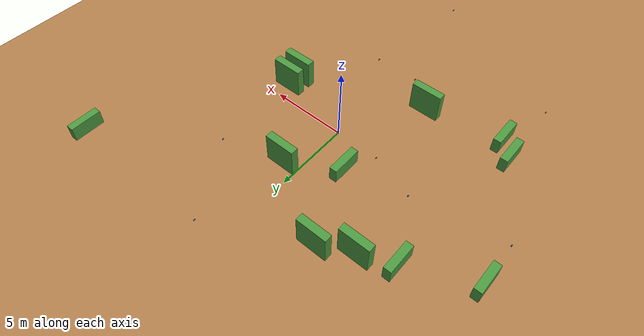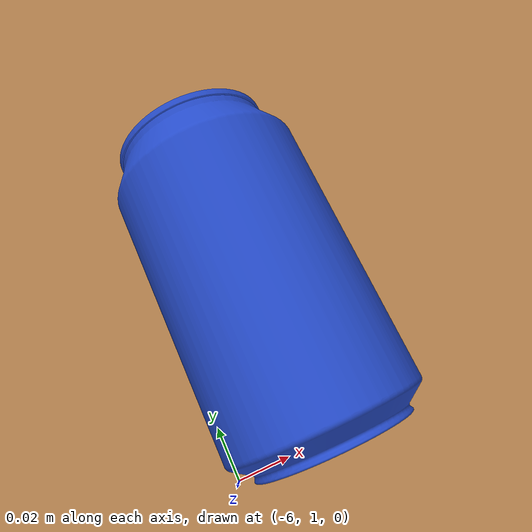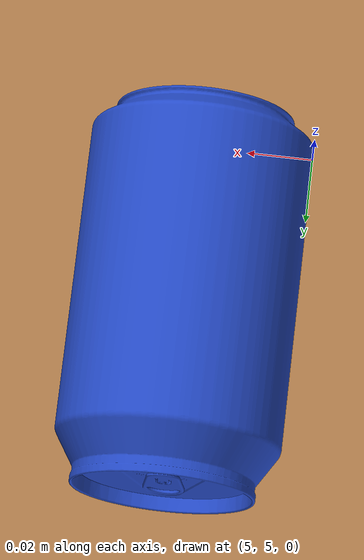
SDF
<?xml version="1.0"?>
<sdf version='1.6'>
<!--monde de base "simple_world"-->
    <world name='default'>
        <include>
            <uri>model://sun</uri>
        </include>
        <model name='ground_plane'>
            <static>1</static>
            <link name='link'>
                <collision name='collision'>
                    <geometry>
                        <plane>
                            <normal>0 0 1</normal>
                            <size>15 15</size>
                        </plane>
                    </geometry>
                    <surface>
                        <friction>
                            <ode>
                                <mu>100</mu>
                                <mu2>50</mu2>
                            </ode>
                        </friction>
                        <bounce/>
                        <contact>
                            <ode/>
                        </contact>
                    </surface>
                    <max_contacts>10</max_contacts>
                </collision>
                <visual name='visual'>
                    <cast_shadows>0</cast_shadows>
                    <geometry>
                        <plane>
                            <normal>0 0 1</normal>
                            <size>40 40</size>
                        </plane>
                    </geometry>
                    <material>
                        <script>
                            <uri>file://media/materials/scripts/gazebo.material</uri>
                            <name>Gazebo/WoodFloor</name>
                        </script>
                    </material>
                </visual>
                <velocity_decay>
                    <linear>0</linear>
                    <angular>0</angular>
                </velocity_decay>
                <self_collide>0</self_collide>
                <kinematic>0</kinematic>
                <gravity>1</gravity>
            </link>
        </model>
		<!--ajout des fichier maillé à notre world crée avec notre générateur d'objets maillé lien dans notre readme -->
		<model name='maillage'>
            <static>1</static>
			<!--maillage-->
      <link name="pepsi_0">
			<pose> -3 0 0 0 0 0</pose>
			<visual name="visual">
				<geometry>
					<mesh>
					  <uri>
             file:///home/corentin/cours_ws/src/my_robot/my_robot_gazebo/world/meshes/Pepsi.STL
           </uri>
           <scale> 0.001 0.001 0.001 </scale>
					</mesh>
				</geometry>
				<material>
					<script>
           <uri>file://media/materials/scripts/gazebo.material</uri>
           <name>Gazebo/Red</name>
					</script>
				</material>
			</visual>
		</link>
		<link name="pepsi_1">
			<pose> 4 -5 0 0 0 0</pose>
			<visual name="visual">
				<geometry>
					<mesh>
					  <uri>
             file:///home/corentin/cours_ws/src/my_robot/my_robot_gazebo/world/meshes/Pepsi.STL
           </uri>
           <scale> 0.001 0.001 0.001 </scale>
					</mesh>
				</geometry>
				<material>
					<script>
           <uri>file://media/materials/scripts/gazebo.material</uri>
           <name>Gazebo/Red</name>
					</script>
				</material>
			</visual>
		</link>
		<link name="pepsi_2">
			<pose> -1 -7 0 0 0 0</pose>
			<visual name="visual">
				<geometry>
					<mesh>
					  <uri>
             file:///home/corentin/cours_ws/src/my_robot/my_robot_gazebo/world/meshes/Pepsi.STL
           </uri>
           <scale> 0.001 0.001 0.001 </scale>
					</mesh>
				</geometry>
				<material>
					<script>
           <uri>file://media/materials/scripts/gazebo.material</uri>
           <name>Gazebo/Red</name>
					</script>
				</material>
			</visual>
		</link>
		<link name="pepsi_3">
			<pose> -9 -10 0 0 0 0</pose>
			<visual name="visual">
				<geometry>
					<mesh>
					  <uri>
             file:///home/corentin/cours_ws/src/my_robot/my_robot_gazebo/world/meshes/Pepsi.STL
           </uri>
           <scale> 0.001 0.001 0.001 </scale>
					</mesh>
				</geometry>
				<material>
					<script>
           <uri>file://media/materials/scripts/gazebo.material</uri>
           <name>Gazebo/Red</name>
					</script>
				</material>
			</visual>
		</link>
		<link name="pepsi_4">
			<pose> 2 -7 0 0 0 0</pose>
			<visual name="visual">
				<geometry>
					<mesh>
					  <uri>
             file:///home/corentin/cours_ws/src/my_robot/my_robot_gazebo/world/meshes/Pepsi.STL
           </uri>
           <scale> 0.001 0.001 0.001 </scale>
					</mesh>
				</geometry>
				<material>
					<script>
           <uri>file://media/materials/scripts/gazebo.material</uri>
           <name>Gazebo/Red</name>
					</script>
				</material>
			</visual>
		</link>
		<link name="coca_0">
			<pose> 5 5 0 0 0 0</pose>
			<visual name="visual">
				<geometry>
					<mesh>
					  <uri>
             file:////home/corentin/cours_ws/src/my_robot/my_robot_gazebo/world//meshes/coca.STL
           </uri>
           <scale> 0.001 0.001 0.001 </scale>
					</mesh>
				</geometry>
				<material>
					<script>
           <uri>file://media/materials/scripts/gazebo.material</uri>
           <name>Gazebo/Blue</name>
					</script>
				</material>
			</visual>
		</link>
		<link name="coca_1">
			<pose> 2 10 0 0 0 0</pose>
			<visual name="visual">
				<geometry>
					<mesh>
					  <uri>
             file:////home/corentin/cours_ws/src/my_robot/my_robot_gazebo/world//meshes/coca.STL
           </uri>
           <scale> 0.001 0.001 0.001 </scale>
					</mesh>
				</geometry>
				<material>
					<script>
           <uri>file://media/materials/scripts/gazebo.material</uri>
           <name>Gazebo/Blue</name>
					</script>
				</material>
			</visual>
		</link>
		<link name="coca_2">
			<pose> -12 0 0 0 0 0</pose>
			<visual name="visual">
				<geometry>
					<mesh>
					  <uri>
             file:////home/corentin/cours_ws/src/my_robot/my_robot_gazebo/world//meshes/coca.STL
           </uri>
           <scale> 0.001 0.001 0.001 </scale>
					</mesh>
				</geometry>
				<material>
					<script>
           <uri>file://media/materials/scripts/gazebo.material</uri>
           <name>Gazebo/Blue</name>
					</script>
				</material>
			</visual>
		</link>
		<link name="coca_3">
			<pose> 1 -15 0 0 0 0</pose>
			<visual name="visual">
				<geometry>
					<mesh>
					  <uri>
             file:////home/corentin/cours_ws/src/my_robot/my_robot_gazebo/world//meshes/coca.STL
           </uri>
           <scale> 0.001 0.001 0.001 </scale>
					</mesh>
				</geometry>
				<material>
					<script>
           <uri>file://media/materials/scripts/gazebo.material</uri>
           <name>Gazebo/Blue</name>
					</script>
				</material>
			</visual>
		</link>
		<link name="coca_4">
			<pose> -6 1 0 0 0 0</pose>
			<visual name="visual">
				<geometry>
					<mesh>
					  <uri>
             file:////home/corentin/cours_ws/src/my_robot/my_robot_gazebo/world//meshes/coca.STL
           </uri>
           <scale> 0.001 0.001 0.001 </scale>
					</mesh>
				</geometry>
				<material>
					<script>
           <uri>file://media/materials/scripts/gazebo.material</uri>
           <name>Gazebo/Blue</name>
					</script>
				</material>
			</visual>
		</link>

            <!--maillage-->
		</model>
		<!--ajout des géometrie canonique dans notre world,crée avec notre générateur d'obstacles le lien dans notre readme -->
        <model name='obstacles'>
            <static>1</static>

            <link name="haie_0">
			<pose> -3 -5 1.0 0 0 0</pose>
			<visual name="visual">
				<geometry>
					<box>
						<size>2.0 0.5 2.0</size>
					</box>
				</geometry>
				<material>
					<ambient>0.4 0.3 0.2 1</ambient>
					<diffuse>0.3 0.2 0.1 1</diffuse>
					<specular>0.1 0.1 0.1 1</specular>
					<emissive>0 0 0 0</emissive>
					<script>
                            			<uri>file://media/materials/scripts/gazebo.material</uri>
                            			<name>Gazebo/Grass</name>
                        		</script>
				</material>
			</visual>
			<collision name="collision">
				<geometry>
					<box>
						<size>2.0 0.5 1.0</size>
					</box>
				</geometry>
			</collision>
		</link>
		<link name="haie_1">
			<pose> 1 4 1.0 0 0 0</pose>
			<visual name="visual">
				<geometry>
					<box>
						<size>2.0 0.5 2.0</size>
					</box>
				</geometry>
				<material>
					<ambient>0.4 0.3 0.2 1</ambient>
					<diffuse>0.3 0.2 0.1 1</diffuse>
					<specular>0.1 0.1 0.1 1</specular>
					<emissive>0 0 0 0</emissive>
					<script>
                            			<uri>file://media/materials/scripts/gazebo.material</uri>
                            			<name>Gazebo/Grass</name>
                        		</script>
				</material>
			</visual>
			<collision name="collision">
				<geometry>
					<box>
						<size>2.0 0.5 1.0</size>
					</box>
				</geometry>
			</collision>
		</link>
		<link name="haie_2">
			<pose> -4 7 1.0 0 0 0</pose>
			<visual name="visual">
				<geometry>
					<box>
						<size>2.0 0.5 2.0</size>
					</box>
				</geometry>
				<material>
					<ambient>0.4 0.3 0.2 1</ambient>
					<diffuse>0.3 0.2 0.1 1</diffuse>
					<specular>0.1 0.1 0.1 1</specular>
					<emissive>0 0 0 0</emissive>
					<script>
                            			<uri>file://media/materials/scripts/gazebo.material</uri>
                            			<name>Gazebo/Grass</name>
                        		</script>
				</material>
			</visual>
			<collision name="collision">
				<geometry>
					<box>
						<size>2.0 0.5 1.0</size>
					</box>
				</geometry>
			</collision>
		</link>
		<link name="haie_3">
			<pose> -6 6 1.0 0 0 0</pose>
			<visual name="visual">
				<geometry>
					<box>
						<size>2.0 0.5 2.0</size>
					</box>
				</geometry>
				<material>
					<ambient>0.4 0.3 0.2 1</ambient>
					<diffuse>0.3 0.2 0.1 1</diffuse>
					<specular>0.1 0.1 0.1 1</specular>
					<emissive>0 0 0 0</emissive>
					<script>
                            			<uri>file://media/materials/scripts/gazebo.material</uri>
                            			<name>Gazebo/Grass</name>
                        		</script>
				</material>
			</visual>
			<collision name="collision">
				<geometry>
					<box>
						<size>2.0 0.5 1.0</size>
					</box>
				</geometry>
			</collision>
		</link>
		<link name="haie_4">
			<pose> 5 -2 1.0 0 0 0</pose>
			<visual name="visual">
				<geometry>
					<box>
						<size>2.0 0.5 2.0</size>
					</box>
				</geometry>
				<material>
					<ambient>0.4 0.3 0.2 1</ambient>
					<diffuse>0.3 0.2 0.1 1</diffuse>
					<specular>0.1 0.1 0.1 1</specular>
					<emissive>0 0 0 0</emissive>
					<script>
                            			<uri>file://media/materials/scripts/gazebo.material</uri>
                            			<name>Gazebo/Grass</name>
                        		</script>
				</material>
			</visual>
			<collision name="collision">
				<geometry>
					<box>
						<size>2.0 0.5 1.0</size>
					</box>
				</geometry>
			</collision>
		</link>
		<link name="haie_5">
			<pose> 5 -1 1.0 0 0 0</pose>
			<visual name="visual">
				<geometry>
					<box>
						<size>2.0 0.5 2.0</size>
					</box>
				</geometry>
				<material>
					<ambient>0.4 0.3 0.2 1</ambient>
					<diffuse>0.3 0.2 0.1 1</diffuse>
					<specular>0.1 0.1 0.1 1</specular>
					<emissive>0 0 0 0</emissive>
					<script>
                            			<uri>file://media/materials/scripts/gazebo.material</uri>
                            			<name>Gazebo/Grass</name>
                        		</script>
				</material>
			</visual>
			<collision name="collision">
				<geometry>
					<box>
						<size>2.0 0.5 1.0</size>
					</box>
				</geometry>
			</collision>
		</link>
		<link name="haie90%_0">
			<pose> -12 3 0.5 0 0 1.5708</pose>
			<visual name="visual">
				<geometry>
					<box>
						<size>2.0 0.5 1.0</size>
					</box>
				</geometry>
				<material>
					<ambient>0.4 0.3 0.2 1</ambient>
					<diffuse>0.3 0.2 0.1 1</diffuse>
					<specular>0.1 0.1 0.1 1</specular>
					<emissive>0 0 0 0</emissive>
					<script>
                            			<uri>file://media/materials/scripts/gazebo.material</uri>
                            			<name>Gazebo/Grass</name>
                        		</script>
				</material>
			</visual>
			<collision name="collision">
				<geometry>
					<box>
						<size>2.0 0.5 1.0</size>
					</box>
				</geometry>
			</collision>
		</link>
		<link name="haie90%_1">
			<pose> 12 10 0.5 0 0 1.5708</pose>
			<visual name="visual">
				<geometry>
					<box>
						<size>2.0 0.5 1.0</size>
					</box>
				</geometry>
				<material>
					<ambient>0.4 0.3 0.2 1</ambient>
					<diffuse>0.3 0.2 0.1 1</diffuse>
					<specular>0.1 0.1 0.1 1</specular>
					<emissive>0 0 0 0</emissive>
					<script>
                            			<uri>file://media/materials/scripts/gazebo.material</uri>
                            			<name>Gazebo/Grass</name>
                        		</script>
				</material>
			</visual>
			<collision name="collision">
				<geometry>
					<box>
						<size>2.0 0.5 1.0</size>
					</box>
				</geometry>
			</collision>
		</link>
		<link name="haie90%_2">
			<pose> -8 -6 0.5 0 0 1.5708</pose>
			<visual name="visual">
				<geometry>
					<box>
						<size>2.0 0.5 1.0</size>
					</box>
				</geometry>
				<material>
					<ambient>0.4 0.3 0.2 1</ambient>
					<diffuse>0.3 0.2 0.1 1</diffuse>
					<specular>0.1 0.1 0.1 1</specular>
					<emissive>0 0 0 0</emissive>
					<script>
                            			<uri>file://media/materials/scripts/gazebo.material</uri>
                            			<name>Gazebo/Grass</name>
                        		</script>
				</material>
			</visual>
			<collision name="collision">
				<geometry>
					<box>
						<size>2.0 0.5 1.0</size>
					</box>
				</geometry>
			</collision>
		</link>
		<link name="haie90%_3">
			<pose> -2 2 0.5 0 0 1.5708</pose>
			<visual name="visual">
				<geometry>
					<box>
						<size>2.0 0.5 1.0</size>
					</box>
				</geometry>
				<material>
					<ambient>0.4 0.3 0.2 1</ambient>
					<diffuse>0.3 0.2 0.1 1</diffuse>
					<specular>0.1 0.1 0.1 1</specular>
					<emissive>0 0 0 0</emissive>
					<script>
                            			<uri>file://media/materials/scripts/gazebo.material</uri>
                            			<name>Gazebo/Grass</name>
                        		</script>
				</material>
			</visual>
			<collision name="collision">
				<geometry>
					<box>
						<size>2.0 0.5 1.0</size>
					</box>
				</geometry>
			</collision>
		</link>
		<link name="haie90%_4">
			<pose> -8 5 0.5 0 0 1.5708</pose>
			<visual name="visual">
				<geometry>
					<box>
						<size>2.0 0.5 1.0</size>
					</box>
				</geometry>
				<material>
					<ambient>0.4 0.3 0.2 1</ambient>
					<diffuse>0.3 0.2 0.1 1</diffuse>
					<specular>0.1 0.1 0.1 1</specular>
					<emissive>0 0 0 0</emissive>
					<script>
                            			<uri>file://media/materials/scripts/gazebo.material</uri>
                            			<name>Gazebo/Grass</name>
                        		</script>
				</material>
			</visual>
			<collision name="collision">
				<geometry>
					<box>
						<size>2.0 0.5 1.0</size>
					</box>
				</geometry>
			</collision>
		</link>
		<link name="haie90%_5">
			<pose> -9 -5 0.5 0 0 1.5708</pose>
			<visual name="visual">
				<geometry>
					<box>
						<size>2.0 0.5 1.0</size>
					</box>
				</geometry>
				<material>
					<ambient>0.4 0.3 0.2 1</ambient>
					<diffuse>0.3 0.2 0.1 1</diffuse>
					<specular>0.1 0.1 0.1 1</specular>
					<emissive>0 0 0 0</emissive>
					<script>
                            			<uri>file://media/materials/scripts/gazebo.material</uri>
                            			<name>Gazebo/Grass</name>
                        		</script>
				</material>
			</visual>
			<collision name="collision">
				<geometry>
					<box>
						<size>2.0 0.5 1.0</size>
					</box>
				</geometry>
			</collision>
		</link>
        </model>

    </world>
</sdf>
